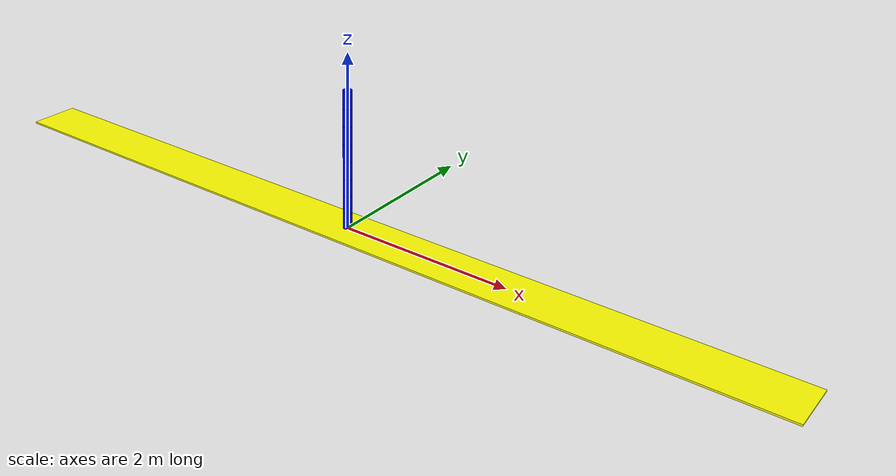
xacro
<?xml version="1.0"?>

<robot name="robot_kuka" xmlns:xacro="http://wiki.ros.org/xacro">
    <xacro:include filename="$(find esercizio6)/urdf/robot_kuka_macro.xacro" />

<xacro:base_link_macro
			base_link_name="base_link">

		</xacro:base_link_macro>

<xacro:kuka_joint
			name="joint0"
			type="prismatic"
			parent="base_link"
			child="link1">
			<origin xyz="0 0 0"/>
			<axis xyz="1 0 0"/>
			<orient rpy="0 0 0"/>

	    <limit effort="176" velocity="0.1" lower="-5" upper="5">
		</limit>

		</xacro:kuka_joint>

<xacro:kuka_link
			name="link1">
			<geometry>
				<cylinder length="0.2" radius="0.05"/>
			</geometry>

		    <material name="red">
		      <color rgba="0 0 1 1"/>
		    </material>

			<origin xyz="0 0 0.1" />
			<orient rpy="0 0 0"/>

		</xacro:kuka_link>

<xacro:kuka_joint
			name="joint1"
			type="revolute"
			parent="link1"
			child="link2">
			<origin xyz="0 0 0.2"/>
			<axis xyz="0 1 0"/>
			<orient rpy="0 0 0"/>

	    <limit effort="176" velocity="0.1" lower="-2.96" upper="2.96">
		</limit>

		</xacro:kuka_joint>

<xacro:kuka_link
			name="link2">
			<geometry>
				<cylinder length="0.2" radius="0.05"/>
			</geometry>

		    <material name="red">
		      <color rgba="0 0 1 1"/>
		    </material>

			<origin xyz="0 0 0.1" />
			<orient rpy="0 0 0"/>

		</xacro:kuka_link>

<xacro:kuka_joint
			name="joint2"
			type="revolute"
			parent="link2"
			child="link3">
			<origin xyz="0 0 0.2"/>
			<axis xyz="0 0 1"/>
			<orient rpy="${3.14/2} 0 ${3.14}"/>

	    <limit effort="176" velocity="0.1" lower="-2.09" upper="2.09">
		</limit>

		</xacro:kuka_joint>

<xacro:kuka_link
			name="link3">
			<geometry>
				<cylinder length="0.2" radius="0.05"/>
			</geometry>

		    <material name="red">
		      <color rgba="0 0 1 1"/>
		    </material>

			<origin xyz="0 0 0.1" />
			<orient rpy="0 0 0"/>

		</xacro:kuka_link>

<xacro:kuka_joint
			name="joint3"
			type="revolute"
			parent="link3"
			child="link4">
			<origin xyz="0 0 0.2"/>
			<axis xyz="0 1 0"/>
			<orient rpy="${3.14} 0 ${3.14}"/>

	    <limit effort="110" velocity="0.1" lower="-2.96" upper="2.96">
		</limit>

		</xacro:kuka_joint>

<xacro:kuka_link
			name="link4">
			<geometry>
				<cylinder length="0.2" radius="0.05"/>
			</geometry>

		    <material name="red">
		      <color rgba="0 0 1 1"/>
		    </material>

			<origin xyz="0 0 0.1" />
			<orient rpy="0 0 0"/>

		</xacro:kuka_link>

<xacro:kuka_joint
			name="joint4"
			type="revolute"
			parent="link4"
			child="link5">
			<origin xyz="0 0 0.2"/>
			<axis xyz="0 0 1"/>
			<orient rpy="${3.14} 0 0"/>

	    <limit effort="110" velocity="0.1" lower="-2.09" upper="2.09">
		</limit>

		</xacro:kuka_joint>

<xacro:kuka_link
			name="link5">
			<geometry>
				<cylinder length="0.2" radius="0.05"/>
			</geometry>

		    <material name="red">
		      <color rgba="0 0 1 1"/>
		    </material>

			<origin xyz="0 0 0.1" />
			<orient rpy="0 0 0"/>

		</xacro:kuka_link>

<xacro:kuka_joint
			name="joint5"
			type="revolute"
			parent="link5"
			child="link6">
			<origin xyz="0 0 0.2"/>
			<axis xyz="0 1 0"/>
			<orient rpy="${-3.14} ${3.14} 0"/>

	    <limit effort="110" velocity="0.1" lower="-2.96" upper="2.96">
		</limit>

		</xacro:kuka_joint>

<xacro:kuka_link
			name="link6">
			<geometry>
				<cylinder length="0.2" radius="0.05"/>
			</geometry>

		    <material name="red">
		      <color rgba="0 0 1 1"/>
		    </material>

			<origin xyz="0 0 0.1" />
			<orient rpy="0 0 0"/>

		</xacro:kuka_link>

<xacro:kuka_joint
			name="joint6"
			type="revolute"
			parent="link6"
			child="link7">
			<origin xyz="0 0 0.2"/>
			<axis xyz="0 0 1"/>
			<orient rpy="${3.14} 0 0"/>

	    <limit effort="40" velocity="0.1" lower="-2.09" upper="2.09">
		</limit>

		</xacro:kuka_joint>

<xacro:kuka_link
			name="link7">
			<geometry>
				<cylinder length="0.2" radius="0.05"/>
			</geometry>

		    <material name="red">
		      <color rgba="0 0 1 1"/>
		    </material>

			<origin xyz="0 0 0.1" />
			<orient rpy="0 0 0"/>

		</xacro:kuka_link>

<xacro:kuka_joint
			name="joint7"
			type="revolute"
			parent="link7"
			child="link_ee">
			<origin xyz="0 0 0.2"/>
			<axis xyz="0 1 0"/>
			<orient rpy="${-3.14} ${3.14} 0"/>

	    <limit effort="40" velocity="0.1" lower="-3.05" upper="3.05">
		</limit>

		</xacro:kuka_joint>

<xacro:kuka_link
			name="link_ee">
			<geometry>
				<cylinder length="0.2" radius="0.05"/>
			</geometry>

		    <material name="red">
		      <color rgba="0 0 1 1"/>
		    </material>

			<origin xyz="0 0 0.1" />
			<orient rpy="0 0 0"/>

		</xacro:kuka_link>

</robot>

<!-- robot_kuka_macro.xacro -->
<robot name="robot_kuka_macro" xmlns:xacro="http://wiki.ros.org/xacro">

	<xacro:macro name="base_link_macro" params="base_link_name">
		<link name="${base_link_name}">
			<visual>
				<geometry>
					<box size="10 0.6 0.02"/>
				</geometry>
				<origin rpy="0 0 0" xyz="0 0 0"/>
					<material name="yellow">
						<color rgba="1 1 0 1"/>
					</material>
			</visual>

		</link>
	</xacro:macro>

	<xacro:macro name="kuka_link" params="name *geometry *origin *orient  *material">
		<link name="${name}">
			<visual>
				<xacro:insert_block name="geometry"/>
				<xacro:insert_block name="origin" />
				<xacro:insert_block name="orient" />
				<xacro:insert_block name="material" />

		  </visual>

	  </link>
	</xacro:macro>

	<xacro:macro name="kuka_joint" params="name type parent child *origin *axis *orient *limit ">
		<joint name="${name}" type="${type}">
			<parent link="${parent}" />
			<child link="${child}" />
	   			<xacro:insert_block name="origin" />
				<xacro:insert_block name="axis" />
				<xacro:insert_block name="orient" />
				<xacro:insert_block name="limit" />

	    <dynamics damping="50" friction="1"/>
		</joint>
	</xacro:macro>

</robot>
